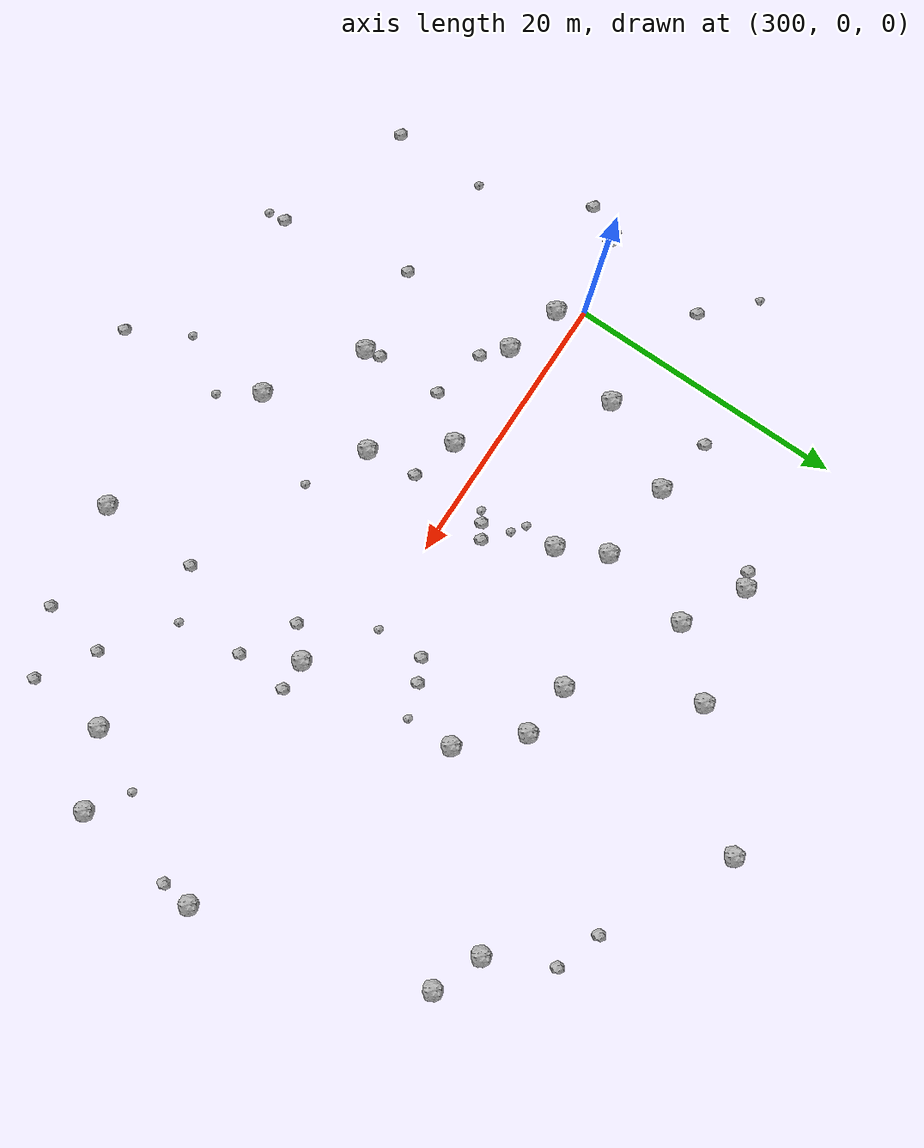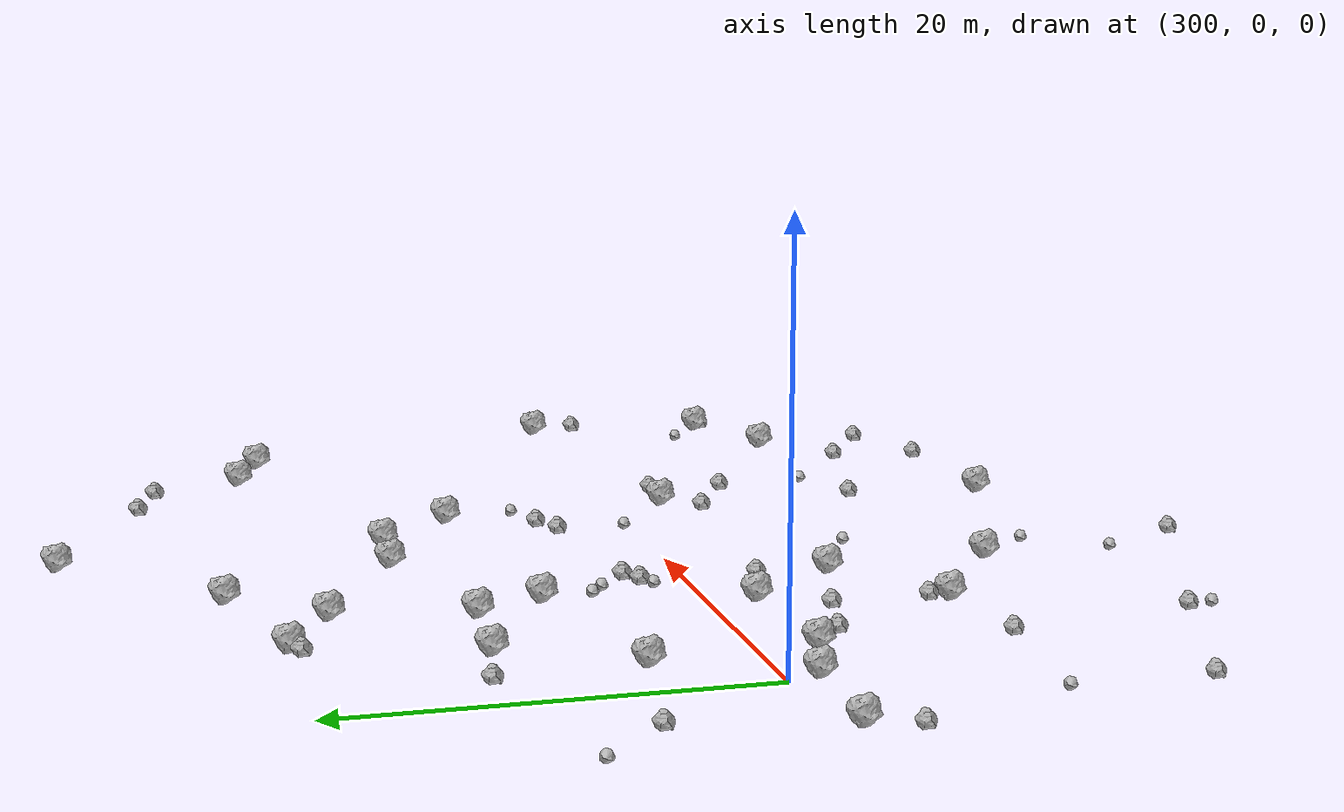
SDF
<sdf version="1.6">
 <world name="default">
  <include><uri>model://sun</uri></include>
  <model name="rock1_8_2">
   <include><uri>model://rock1</uri><pose>314.9977885583956 7.262806356255702 0.5 0 0 0</pose></include>
  </model>
  <model name="rock1_8_3">
   <include><uri>model://rock1</uri><pose>340.6892752155759 18.266494674650744 0.5 0 0 0</pose></include>
  </model>
  <model name="rock1_8_4">
   <include><uri>model://rock1</uri><pose>329.6549492523827 -19.858832671115742 0.5 0 0 0</pose></include>
  </model>
  <model name="rock1_8_5">
   <include><uri>model://rock1</uri><pose>314.56680290215684 17.279463196697712 0.5 0 0 0</pose></include>
  </model>
  <model name="rock1_8_6">
   <include><uri>model://rock1</uri><pose>310.7729586835327 -11.26031031957439 0.5 0 0 0</pose></include>
  </model>
  <model name="rock1_8_7">
   <include><uri>model://rock1</uri><pose>301.12743288593975 -1.7416092550070275 0.5 0 0 0</pose></include>
  </model>
  <model name="rock1_8_8">
   <include><uri>model://rock1</uri><pose>312.79365598039715 -2.474083988017796 0.5 0 0 0</pose></include>
  </model>
  <model name="rock1_8_9">
   <include><uri>model://rock1</uri><pose>330.2390104447362 8.902526130165377 0.5 0 0 0</pose></include>
  </model>
  <model name="rock1_8_10">
   <include><uri>model://rock1</uri><pose>305.1100474325858 -2.977842084782157 0.5 0 0 0</pose></include>
  </model>
  <model name="rock1_8_11">
   <include><uri>model://rock1</uri><pose>342.43168657567367 -11.629540268410615 0.5 0 0 0</pose></include>
  </model>
  <model name="rock1_8_12">
   <include><uri>model://rock1</uri><pose>318.3252008756049 21.569542916301927 0.5 0 0 0</pose></include>
  </model>
  <model name="rock1_8_13">
   <include><uri>model://rock1</uri><pose>304.3590958476062 4.955335234571514 0.5 0 0 0</pose></include>
  </model>
  <model name="rock1_8_14">
   <include><uri>model://rock1</uri><pose>307.5721851249448 11.174345429630769 0.5 0 0 0</pose></include>
  </model>
  <model name="rock1_8_15">
   <include><uri>model://rock1</uri><pose>317.24399316278624 -15.476240269053015 0.5 0 0 0</pose></include>
  </model>
  <model name="rock1_8_16">
   <include><uri>model://rock1</uri><pose>347.55645847995567 -9.219721562186258 0.5 0 0 0</pose></include>
  </model>
  <model name="rock1_8_17">
   <include><uri>model://rock1</uri><pose>331.08837158959165 -2.7518120016738976 0.5 0 0 0</pose></include>
  </model>
  <model name="rock1_8_18">
   <include><uri>model://rock1</uri><pose>316.54402623416934 -7.167412758532276 0.5 0 0 0</pose></include>
  </model>
  <model name="rock1_8_19">
   <include><uri>model://rock1</uri><pose>344.32978707007214 16.82499727035229 0.5 0 0 0</pose></include>
  </model>
  <model name="rock1_8_20">
   <include><uri>model://rock1</uri><pose>348.7612597030844 0.15942931237408686 0.5 0 0 0</pose></include>
  </model>
  <model name="rock1_8_21">
   <include><uri>model://rock1</uri><pose>310.12904348072186 19.686398516564147 0.5 0 0 0</pose></include>
  </model>
  <model name="rock1_8_22">
   <include><uri>model://rock1</uri><pose>313.3484399800653 10.621923522297152 0.5 0 0 0</pose></include>
  </model>
  <model name="rock1_8_23">
   <include><uri>model://rock1</uri><pose>326.62667453309643 12.753371995961686 0.5 0 0 0</pose></include>
  </model>
  <model name="rock1_8_24">
   <include><uri>model://rock1</uri><pose>325.83621069905087 28.768549759958077 0.5 0 0 0</pose></include>
  </model>
  <model name="rock1_8_25">
   <include><uri>model://rock1</uri><pose>322.66708185916514 13.066175827630985 0.5 0 0 0</pose></include>
  </model>
  <model name="rock1_8_26">
   <include><uri>model://rock1</uri><pose>294.589785005434 -1.4411615612205217 0.5 0 0 0</pose></include>
  </model>
  <model name="rock2_8_0">
   <include><uri>model://rock2</uri><pose>304.4683255361007 -11.904592838384719 0.3 0 0 0</pose></include>
  </model>
  <model name="rock2_8_1">
   <include><uri>model://rock2</uri><pose>317.35858402917074 2.8108403225121634 0.3 0 0 0</pose></include>
  </model>
  <model name="rock2_8_2">
   <include><uri>model://rock2</uri><pose>318.8830275511918 -26.020571050872494 0.3 0 0 0</pose></include>
  </model>
  <model name="rock2_8_3">
   <include><uri>model://rock2</uri><pose>303.2670854728401 12.026898910980876 0.3 0 0 0</pose></include>
  </model>
  <model name="rock2_8_4">
   <include><uri>model://rock2</uri><pose>347.4611972947721 -9.525470858781762 0.3 0 0 0</pose></include>
  </model>
  <model name="rock2_8_5">
   <include><uri>model://rock2</uri><pose>348.52442087960765 -2.04585928889815 0.3 0 0 0</pose></include>
  </model>
  <model name="rock2_8_6">
   <include><uri>model://rock2</uri><pose>333.36571825871374 -2.745000731544863 0.3 0 0 0</pose></include>
  </model>
  <model name="rock2_8_7">
   <include><uri>model://rock2</uri><pose>296.4963984282458 -17.851523410701787 0.3 0 0 0</pose></include>
  </model>
  <model name="rock2_8_8">
   <include><uri>model://rock2</uri><pose>293.3356889105154 -3.654470205836944 0.3 0 0 0</pose></include>
  </model>
  <model name="rock2_8_9">
   <include><uri>model://rock2</uri><pose>310.5709026997517 -10.149384442455037 0.3 0 0 0</pose></include>
  </model>
  <model name="rock2_8_10">
   <include><uri>model://rock2</uri><pose>338.47649752546477 22.9447203551592 0.3 0 0 0</pose></include>
  </model>
  <model name="rock2_8_11">
   <include><uri>model://rock2</uri><pose>342.14924503278723 -17.21984469225835 0.3 0 0 0</pose></include>
  </model>
  <model name="rock2_8_12">
   <include><uri>model://rock2</uri><pose>337.5094772303005 -19.127731691551325 0.3 0 0 0</pose></include>
  </model>
  <model name="rock2_8_13">
   <include><uri>model://rock2</uri><pose>329.14142508485884 -4.4529917192155715 0.3 0 0 0</pose></include>
  </model>
  <model name="rock2_8_14">
   <include><uri>model://rock2</uri><pose>309.0466126174361 19.281384604946552 0.3 0 0 0</pose></include>
  </model>
  <model name="rock2_8_15">
   <include><uri>model://rock2</uri><pose>338.25092263850945 -14.711975705966314 0.3 0 0 0</pose></include>
  </model>
  <model name="rock2_8_16">
   <include><uri>model://rock2</uri><pose>316.15457195839537 -3.4770366550005463 0.3 0 0 0</pose></include>
  </model>
  <model name="rock2_8_17">
   <include><uri>model://rock2</uri><pose>295.76021676883386 6.593644101566504 0.3 0 0 0</pose></include>
  </model>
  <model name="rock2_8_18">
   <include><uri>model://rock2</uri><pose>333.03333813010937 -6.543176487532499 0.3 0 0 0</pose></include>
  </model>
  <model name="rock2_8_19">
   <include><uri>model://rock2</uri><pose>335.17257224269537 24.097265241337062 0.3 0 0 0</pose></include>
  </model>
  <model name="rock2_8_20">
   <include><uri>model://rock2</uri><pose>310.4818973111261 -5.376920413402061 0.3 0 0 0</pose></include>
  </model>
  <model name="rock2_8_21">
   <include><uri>model://rock2</uri><pose>306.6582728231876 -4.401986593669676 0.3 0 0 0</pose></include>
  </model>
  <model name="rock2_8_22">
   <include><uri>model://rock2</uri><pose>326.3529817944401 3.8975746852018602 0.3 0 0 0</pose></include>
  </model>
  <model name="rock2_8_23">
   <include><uri>model://rock2</uri><pose>316.37603412220096 2.2050064514676464 0.3 0 0 0</pose></include>
  </model>
  <model name="rock2_8_24">
   <include><uri>model://rock2</uri><pose>327.93612137451413 4.657125232479061 0.3 0 0 0</pose></include>
  </model>
  <model name="rock2_8_25">
   <include><uri>model://rock2</uri><pose>306.19977304522854 -21.178386127314347 0.3 0 0 0</pose></include>
  </model>
  <model name="rock2_8_26">
   <include><uri>model://rock2</uri><pose>329.9135502180163 -12.780848352420225 0.3 0 0 0</pose></include>
  </model>
  <model name="rock3_8_0">
   <include><uri>model://rock3</uri><pose>315.6662875372833 1.6676429961904482 0.2 0 0 0</pose></include>
  </model>
  <model name="rock3_8_1">
   <include><uri>model://rock3</uri><pose>344.7420736015962 -7.328134307632947 0.2 0 0 0</pose></include>
  </model>
  <model name="rock3_8_2">
   <include><uri>model://rock3</uri><pose>333.55260037543883 -11.257376697391564 0.2 0 0 0</pose></include>
  </model>
  <model name="rock3_8_3">
   <include><uri>model://rock3</uri><pose>319.08733460855547 -18.184776912512813 0.2 0 0 0</pose></include>
  </model>
  <model name="rock3_8_4">
   <include><uri>model://rock3</uri><pose>320.87788863954313 -9.447971985123239 0.2 0 0 0</pose></include>
  </model>
  <model name="rock3_8_5">
   <include><uri>model://rock3</uri><pose>330.3073983038945 5.424985197959657 0.2 0 0 0</pose></include>
  </model>
  <model name="rock3_8_6">
   <include><uri>model://rock3</uri><pose>306.3347815304615 -22.433916926072317 0.2 0 0 0</pose></include>
  </model>
  <model name="rock3_8_7">
   <include><uri>model://rock3</uri><pose>292.5214476357402 9.716069920376114 0.2 0 0 0</pose></include>
  </model>
  <model name="rock3_8_8">
   <include><uri>model://rock3</uri><pose>314.8321164406034 4.851941148607715 0.2 0 0 0</pose></include>
  </model>
  <model name="rock3_8_9">
   <include><uri>model://rock3</uri><pose>315.77230211464337 4.173329824923435 0.2 0 0 0</pose></include>
  </model>
  <model name="rock3_8_10">
   <include><uri>model://rock3</uri><pose>296.4875636753713 -11.267818062358085 0.2 0 0 0</pose></include>
  </model>
  <model name="rock3_8_11">
   <include><uri>model://rock3</uri><pose>326.3825622815813 0.38683113961524285 0.2 0 0 0</pose></include>
  </model>
  <model name="rock3_8_12">
   <include><uri>model://rock3</uri><pose>316.58884239874743 -21.882524788437774 0.2 0 0 0</pose></include>
  </model>
 </world>
</sdf>
